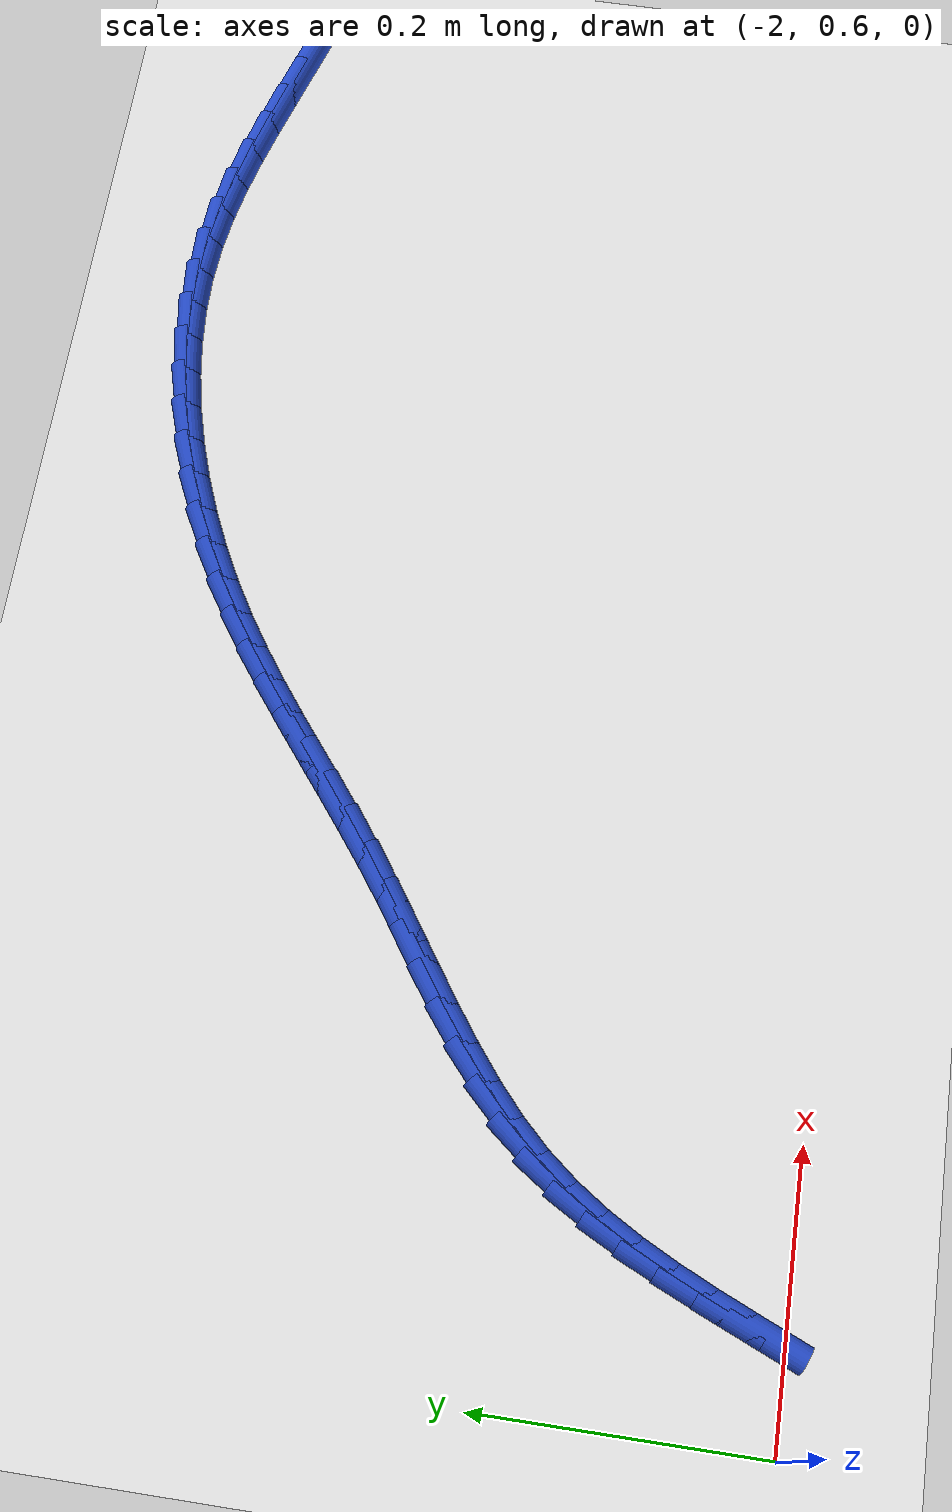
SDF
<sdf version="1.6">
 <world name="default">
  <model name="ground_plane">
   <static>1</static>
   <link name="link">
    <collision name="collision">
     <geometry><plane><normal>0 0 1</normal><size>100 100</size></plane></geometry>
     <surface><friction><ode><mu>100</mu><mu2>50</mu2></ode></friction></surface>
    </collision>
    <visual name="visual">
     <cast_shadows>0</cast_shadows>
     <geometry><plane><normal>0 0 1</normal><size>100 100</size></plane></geometry>
     <material>
      <script><uri>file://media/materials/scripts/gazebo.material</uri><name>Gazebo/WhiteGlow</name></script>
     </material>
    </visual>
   </link>
  </model>
  <model name="line">
   <link name="link_56">
    <pose>-1.00340821507115 1.0851735138263947 0.01 0 1.57 -0.29223755716707067</pose>
    <collision name="collision">
     <geometry><cylinder><radius>0.01</radius><length>0.08</length></cylinder></geometry>
    </collision>
    <visual name="visual">
     <material>
      <script><name>Gazebo/Blue</name><uri>file://media/materials/scripts/gazebo.material</uri></script>
     </material>
     <geometry><cylinder><radius>0.01</radius><length>0.08</length></cylinder></geometry>
    </visual>
   </link>
   <link name="link_57">
    <pose>-1.031790990753054 1.093712506826285 0.01 0 1.57 -0.28821362235391973</pose>
    <collision name="collision">
     <geometry><cylinder><radius>0.01</radius><length>0.08</length></cylinder></geometry>
    </collision>
    <visual name="visual">
     <material>
      <script><name>Gazebo/Blue</name><uri>file://media/materials/scripts/gazebo.material</uri></script>
     </material>
     <geometry><cylinder><radius>0.01</radius><length>0.08</length></cylinder></geometry>
    </visual>
   </link>
   <link name="link_58">
    <pose>-1.0601966797976858 1.1021338950456256 0.01 0 1.57 -0.27050898241524346</pose>
    <collision name="collision">
     <geometry><cylinder><radius>0.01</radius><length>0.08</length></cylinder></geometry>
    </collision>
    <visual name="visual">
     <material>
      <script><name>Gazebo/Blue</name><uri>file://media/materials/scripts/gazebo.material</uri></script>
     </material>
     <geometry><cylinder><radius>0.01</radius><length>0.08</length></cylinder></geometry>
    </visual>
   </link>
   <link name="link_59">
    <pose>-1.088674833239998 1.1100310630209114 0.01 0 1.57 -0.23892404549896074</pose>
    <collision name="collision">
     <geometry><cylinder><radius>0.01</radius><length>0.08</length></cylinder></geometry>
    </collision>
    <visual name="visual">
     <material>
      <script><name>Gazebo/Blue</name><uri>file://media/materials/scripts/gazebo.material</uri></script>
     </material>
     <geometry><cylinder><radius>0.01</radius><length>0.08</length></cylinder></geometry>
    </visual>
   </link>
   <link name="link_60">
    <pose>-1.1172750021149411 1.1169973952886356 0.01 0 1.57 -0.19319904887697997</pose>
    <collision name="collision">
     <geometry><cylinder><radius>0.01</radius><length>0.08</length></cylinder></geometry>
    </collision>
    <visual name="visual">
     <material>
      <script><name>Gazebo/Blue</name><uri>file://media/materials/scripts/gazebo.material</uri></script>
     </material>
     <geometry><cylinder><radius>0.01</radius><length>0.08</length></cylinder></geometry>
    </visual>
   </link>
   <link name="link_61">
    <pose>-1.1460467374574692 1.1226262763852939 0.01 0 1.57 -0.13319877766285074</pose>
    <collision name="collision">
     <geometry><cylinder><radius>0.01</radius><length>0.08</length></cylinder></geometry>
    </collision>
    <visual name="visual">
     <material>
      <script><name>Gazebo/Blue</name><uri>file://media/materials/scripts/gazebo.material</uri></script>
     </material>
     <geometry><cylinder><radius>0.01</radius><length>0.08</length></cylinder></geometry>
    </visual>
   </link>
   <link name="link_62">
    <pose>-1.1750395903025324 1.1265110908473803 0.01 0 1.57 -0.06005425638500705</pose>
    <collision name="collision">
     <geometry><cylinder><radius>0.01</radius><length>0.08</length></cylinder></geometry>
    </collision>
    <visual name="visual">
     <material>
      <script><name>Gazebo/Blue</name><uri>file://media/materials/scripts/gazebo.material</uri></script>
     </material>
     <geometry><cylinder><radius>0.01</radius><length>0.08</length></cylinder></geometry>
    </visual>
   </link>
   <link name="link_63">
    <pose>-1.2042945184311906 1.1282700889272417 0.01 0 1.57 0.015351497678062414</pose>
    <collision name="collision">
     <geometry><cylinder><radius>0.01</radius><length>0.08</length></cylinder></geometry>
    </collision>
    <visual name="visual">
     <material>
      <script><name>Gazebo/Blue</name><uri>file://media/materials/scripts/gazebo.material</uri></script>
     </material>
     <geometry><cylinder><radius>0.01</radius><length>0.08</length></cylinder></geometry>
    </visual>
   </link>
   <link name="link_64">
    <pose>-1.233750066557036 1.1278178666231757 0.01 0 1.57 0.08628583575709244</pose>
    <collision name="collision">
     <geometry><cylinder><radius>0.01</radius><length>0.08</length></cylinder></geometry>
    </collision>
    <visual name="visual">
     <material>
      <script><name>Gazebo/Blue</name><uri>file://media/materials/scripts/gazebo.material</uri></script>
     </material>
     <geometry><cylinder><radius>0.01</radius><length>0.08</length></cylinder></geometry>
    </visual>
   </link>
   <link name="link_65">
    <pose>-1.2632774915517027 1.1252637261971643 0.01 0 1.57 0.15296749406116503</pose>
    <collision name="collision">
     <geometry><cylinder><radius>0.01</radius><length>0.08</length></cylinder></geometry>
    </collision>
    <visual name="visual">
     <material>
      <script><name>Gazebo/Blue</name><uri>file://media/materials/scripts/gazebo.material</uri></script>
     </material>
     <geometry><cylinder><radius>0.01</radius><length>0.08</length></cylinder></geometry>
    </visual>
   </link>
   <link name="link_66">
    <pose>-1.2927468729551836 1.1207203766758969 0.01 0 1.57 0.21583152023191826</pose>
    <collision name="collision">
     <geometry><cylinder><radius>0.01</radius><length>0.08</length></cylinder></geometry>
    </collision>
    <visual name="visual">
     <material>
      <script><name>Gazebo/Blue</name><uri>file://media/materials/scripts/gazebo.material</uri></script>
     </material>
     <geometry><cylinder><radius>0.01</radius><length>0.08</length></cylinder></geometry>
    </visual>
   </link>
   <link name="link_67">
    <pose>-1.3220282903074692 1.114300527086062 0.01 0 1.57 0.27537157020141606</pose>
    <collision name="collision">
     <geometry><cylinder><radius>0.01</radius><length>0.08</length></cylinder></geometry>
    </collision>
    <visual name="visual">
     <material>
      <script><name>Gazebo/Blue</name><uri>file://media/materials/scripts/gazebo.material</uri></script>
     </material>
     <geometry><cylinder><radius>0.01</radius><length>0.08</length></cylinder></geometry>
    </visual>
   </link>
   <link name="link_68">
    <pose>-1.3509918231485527 1.10611688645435 0.01 0 1.57 0.33211315594913415</pose>
    <collision name="collision">
     <geometry><cylinder><radius>0.01</radius><length>0.08</length></cylinder></geometry>
    </collision>
    <visual name="visual">
     <material>
      <script><name>Gazebo/Blue</name><uri>file://media/materials/scripts/gazebo.material</uri></script>
     </material>
     <geometry><cylinder><radius>0.01</radius><length>0.08</length></cylinder></geometry>
    </visual>
   </link>
   <link name="link_69">
    <pose>-1.379507551018425 1.0962821638074498 0.01 0 1.57 0.3865977597009966</pose>
    <collision name="collision">
     <geometry><cylinder><radius>0.01</radius><length>0.08</length></cylinder></geometry>
    </collision>
    <visual name="visual">
     <material>
      <script><name>Gazebo/Blue</name><uri>file://media/materials/scripts/gazebo.material</uri></script>
     </material>
     <geometry><cylinder><radius>0.01</radius><length>0.08</length></cylinder></geometry>
    </visual>
   </link>
   <link name="link_70">
    <pose>-1.407445553457078 1.0849090681720504 0.01 0 1.57 0.4393756867573206</pose>
    <collision name="collision">
     <geometry><cylinder><radius>0.01</radius><length>0.08</length></cylinder></geometry>
    </collision>
    <visual name="visual">
     <material>
      <script><name>Gazebo/Blue</name><uri>file://media/materials/scripts/gazebo.material</uri></script>
     </material>
     <geometry><cylinder><radius>0.01</radius><length>0.08</length></cylinder></geometry>
    </visual>
   </link>
   <link name="link_71">
    <pose>-1.4346759100045041 1.072110308574841 0.01 0 1.57 0.4910056976154706</pose>
    <collision name="collision">
     <geometry><cylinder><radius>0.01</radius><length>0.08</length></cylinder></geometry>
    </collision>
    <visual name="visual">
     <material>
      <script><name>Gazebo/Blue</name><uri>file://media/materials/scripts/gazebo.material</uri></script>
     </material>
     <geometry><cylinder><radius>0.01</radius><length>0.08</length></cylinder></geometry>
    </visual>
   </link>
   <link name="link_72">
    <pose>-1.4610687002006943 1.0579985940425105 0.01 0 1.57 0.5419522532324829</pose>
    <collision name="collision">
     <geometry><cylinder><radius>0.01</radius><length>0.08</length></cylinder></geometry>
    </collision>
    <visual name="visual">
     <material>
      <script><name>Gazebo/Blue</name><uri>file://media/materials/scripts/gazebo.material</uri></script>
     </material>
     <geometry><cylinder><radius>0.01</radius><length>0.08</length></cylinder></geometry>
    </visual>
   </link>
   <link name="link_73">
    <pose>-1.4864981595852664 1.0426878607479424 0.01 0 1.57 0.5887120614261674</pose>
    <collision name="collision">
     <geometry><cylinder><radius>0.01</radius><length>0.08</length></cylinder></geometry>
    </collision>
    <visual name="visual">
     <material>
      <script><name>Gazebo/Blue</name><uri>file://media/materials/scripts/gazebo.material</uri></script>
     </material>
     <geometry><cylinder><radius>0.01</radius><length>0.08</length></cylinder></geometry>
    </visual>
   </link>
   <link name="link_74">
    <pose>-1.5109880116252294 1.0263361843148298 0.01 0 1.57 0.6259866281933434</pose>
    <collision name="collision">
     <geometry><cylinder><radius>0.01</radius><length>0.08</length></cylinder></geometry>
    </collision>
    <visual name="visual">
     <material>
      <script><name>Gazebo/Blue</name><uri>file://media/materials/scripts/gazebo.material</uri></script>
     </material>
     <geometry><cylinder><radius>0.01</radius><length>0.08</length></cylinder></geometry>
    </visual>
   </link>
   <link name="link_75">
    <pose>-1.5347494586968098 1.0091569974531276 0.01 0 1.57 0.653000326784541</pose>
    <collision name="collision">
     <geometry><cylinder><radius>0.01</radius><length>0.08</length></cylinder></geometry>
    </collision>
    <visual name="visual">
     <material>
      <script><name>Gazebo/Blue</name><uri>file://media/materials/scripts/gazebo.material</uri></script>
     </material>
     <geometry><cylinder><radius>0.01</radius><length>0.08</length></cylinder></geometry>
    </visual>
   </link>
   <link name="link_76">
    <pose>-1.558005579722825 0.9913672396726592 0.01 0 1.57 0.6695249212850303</pose>
    <collision name="collision">
     <geometry><cylinder><radius>0.01</radius><length>0.08</length></cylinder></geometry>
    </collision>
    <visual name="visual">
     <material>
      <script><name>Gazebo/Blue</name><uri>file://media/materials/scripts/gazebo.material</uri></script>
     </material>
     <geometry><cylinder><radius>0.01</radius><length>0.08</length></cylinder></geometry>
    </visual>
   </link>
   <link name="link_77">
    <pose>-1.5809794536260942 0.9731838504832468 0.01 0 1.57 0.675493985684802</pose>
    <collision name="collision">
     <geometry><cylinder><radius>0.01</radius><length>0.08</length></cylinder></geometry>
    </collision>
    <visual name="visual">
     <material>
      <script><name>Gazebo/Blue</name><uri>file://media/materials/scripts/gazebo.material</uri></script>
     </material>
     <geometry><cylinder><radius>0.01</radius><length>0.08</length></cylinder></geometry>
    </visual>
   </link>
   <link name="link_78">
    <pose>-1.6038941593294362 0.9548237693947149 0.01 0 1.57 0.6709497420908528</pose>
    <collision name="collision">
     <geometry><cylinder><radius>0.01</radius><length>0.08</length></cylinder></geometry>
    </collision>
    <visual name="visual">
     <material>
      <script><name>Gazebo/Blue</name><uri>file://media/materials/scripts/gazebo.material</uri></script>
     </material>
     <geometry><cylinder><radius>0.01</radius><length>0.08</length></cylinder></geometry>
    </visual>
   </link>
   <link name="link_79">
    <pose>-1.6269727757556685 0.9365039359168855 0.01 0 1.57 0.6560216477665919</pose>
    <collision name="collision">
     <geometry><cylinder><radius>0.01</radius><length>0.08</length></cylinder></geometry>
    </collision>
    <visual name="visual">
     <material>
      <script><name>Gazebo/Blue</name><uri>file://media/materials/scripts/gazebo.material</uri></script>
     </material>
     <geometry><cylinder><radius>0.01</radius><length>0.08</length></cylinder></geometry>
    </visual>
   </link>
   <link name="link_80">
    <pose>-1.6504383818276087 0.918441289559582 0.01 0 1.57 0.6311446660395433</pose>
    <collision name="collision">
     <geometry><cylinder><radius>0.01</radius><length>0.08</length></cylinder></geometry>
    </collision>
    <visual name="visual">
     <material>
      <script><name>Gazebo/Blue</name><uri>file://media/materials/scripts/gazebo.material</uri></script>
     </material>
     <geometry><cylinder><radius>0.01</radius><length>0.08</length></cylinder></geometry>
    </visual>
   </link>
   <link name="link_81">
    <pose>-1.6745091627436242 0.9008486929698066 0.01 0 1.57 0.6067883262866891</pose>
    <collision name="collision">
     <geometry><cylinder><radius>0.01</radius><length>0.08</length></cylinder></geometry>
    </collision>
    <visual name="visual">
     <material>
      <script><name>Gazebo/Blue</name><uri>file://media/materials/scripts/gazebo.material</uri></script>
     </material>
     <geometry><cylinder><radius>0.01</radius><length>0.08</length></cylinder></geometry>
    </visual>
   </link>
   <link name="link_82">
    <pose>-1.6991606686183949 0.883736874415861 0.01 0 1.57 0.5973870997326339</pose>
    <collision name="collision">
     <geometry><cylinder><radius>0.01</radius><length>0.08</length></cylinder></geometry>
    </collision>
    <visual name="visual">
     <material>
      <script><name>Gazebo/Blue</name><uri>file://media/materials/scripts/gazebo.material</uri></script>
     </material>
     <geometry><cylinder><radius>0.01</radius><length>0.08</length></cylinder></geometry>
    </visual>
   </link>
   <link name="link_83">
    <pose>-1.724019076008668 0.8668255061242119 0.01 0 1.57 0.6038579779895729</pose>
    <collision name="collision">
     <geometry><cylinder><radius>0.01</radius><length>0.08</length></cylinder></geometry>
    </collision>
    <visual name="visual">
     <material>
      <script><name>Gazebo/Blue</name><uri>file://media/materials/scripts/gazebo.material</uri></script>
     </material>
     <geometry><cylinder><radius>0.01</radius><length>0.08</length></cylinder></geometry>
    </visual>
   </link>
   <link name="link_84">
    <pose>-1.748683426537701 0.8498116547572891 0.01 0 1.57 0.6264634584563161</pose>
    <collision name="collision">
     <geometry><cylinder><radius>0.01</radius><length>0.08</length></cylinder></geometry>
    </collision>
    <visual name="visual">
     <material>
      <script><name>Gazebo/Blue</name><uri>file://media/materials/scripts/gazebo.material</uri></script>
     </material>
     <geometry><cylinder><radius>0.01</radius><length>0.08</length></cylinder></geometry>
    </visual>
   </link>
   <link name="link_85">
    <pose>-1.7727527618287509 0.8323923869775212 0.01 0 1.57 0.6659303173637442</pose>
    <collision name="collision">
     <geometry><cylinder><radius>0.01</radius><length>0.08</length></cylinder></geometry>
    </collision>
    <visual name="visual">
     <material>
      <script><name>Gazebo/Blue</name><uri>file://media/materials/scripts/gazebo.material</uri></script>
     </material>
     <geometry><cylinder><radius>0.01</radius><length>0.08</length></cylinder></geometry>
    </visual>
   </link>
   <link name="link_86">
    <pose>-1.7958261235050728 0.8142647694473372 0.01 0 1.57 0.7233071002915172</pose>
    <collision name="collision">
     <geometry><cylinder><radius>0.01</radius><length>0.08</length></cylinder></geometry>
    </collision>
    <visual name="visual">
     <material>
      <script><name>Gazebo/Blue</name><uri>file://media/materials/scripts/gazebo.material</uri></script>
     </material>
     <geometry><cylinder><radius>0.01</radius><length>0.08</length></cylinder></geometry>
    </visual>
   </link>
   <link name="link_87">
    <pose>-1.8175025531899254 0.7951258688291667 0.01 0 1.57 0.7996435208168676</pose>
    <collision name="collision">
     <geometry><cylinder><radius>0.01</radius><length>0.08</length></cylinder></geometry>
    </collision>
    <visual name="visual">
     <material>
      <script><name>Gazebo/Blue</name><uri>file://media/materials/scripts/gazebo.material</uri></script>
     </material>
     <geometry><cylinder><radius>0.01</radius><length>0.08</length></cylinder></geometry>
    </visual>
   </link>
   <link name="link_88">
    <pose>-1.837381092506565 0.774672751785438 0.01 0 1.57 0.8920874336274356</pose>
    <collision name="collision">
     <geometry><cylinder><radius>0.01</radius><length>0.08</length></cylinder></geometry>
    </collision>
    <visual name="visual">
     <material>
      <script><name>Gazebo/Blue</name><uri>file://media/materials/scripts/gazebo.material</uri></script>
     </material>
     <geometry><cylinder><radius>0.01</radius><length>0.08</length></cylinder></geometry>
    </visual>
   </link>
   <link name="link_89">
    <pose>-1.8551390663523812 0.7526549551115702 0.01 0 1.57 0.9787002481087342</pose>
    <collision name="collision">
     <geometry><cylinder><radius>0.01</radius><length>0.08</length></cylinder></geometry>
    </collision>
    <visual name="visual">
     <material>
      <script><name>Gazebo/Blue</name><uri>file://media/materials/scripts/gazebo.material</uri></script>
     </material>
     <geometry><cylinder><radius>0.01</radius><length>0.08</length></cylinder></geometry>
    </visual>
   </link>
   <link name="link_90">
    <pose>-1.8709467634998638 0.7291524294796564 0.01 0 1.57 1.0498367816689436</pose>
    <collision name="collision">
     <geometry><cylinder><radius>0.01</radius><length>0.08</length></cylinder></geometry>
    </collision>
    <visual name="visual">
     <material>
      <script><name>Gazebo/Blue</name><uri>file://media/materials/scripts/gazebo.material</uri></script>
     </material>
     <geometry><cylinder><radius>0.01</radius><length>0.08</length></cylinder></geometry>
    </visual>
   </link>
   <link name="link_91">
    <pose>-1.8851658714181745 0.7043734124171848 0.01 0 1.57 1.1050111438197032</pose>
    <collision name="collision">
     <geometry><cylinder><radius>0.01</radius><length>0.08</length></cylinder></geometry>
    </collision>
    <visual name="visual">
     <material>
      <script><name>Gazebo/Blue</name><uri>file://media/materials/scripts/gazebo.material</uri></script>
     </material>
     <geometry><cylinder><radius>0.01</radius><length>0.08</length></cylinder></geometry>
    </visual>
   </link>
   <link name="link_92">
    <pose>-1.8981585012282745 0.6785264254084178 0.01 0 1.57 1.14451105194013</pose>
    <collision name="collision">
     <geometry><cylinder><radius>0.01</radius><length>0.08</length></cylinder></geometry>
    </collision>
    <visual name="visual">
     <material>
      <script><name>Gazebo/Blue</name><uri>file://media/materials/scripts/gazebo.material</uri></script>
     </material>
     <geometry><cylinder><radius>0.01</radius><length>0.08</length></cylinder></geometry>
    </visual>
   </link>
   <link name="link_93">
    <pose>-1.9102867640511214 0.6518199899376184 0.01 0 1.57 1.1689526801864314</pose>
    <collision name="collision">
     <geometry><cylinder><radius>0.01</radius><length>0.08</length></cylinder></geometry>
    </collision>
    <visual name="visual">
     <material>
      <script><name>Gazebo/Blue</name><uri>file://media/materials/scripts/gazebo.material</uri></script>
     </material>
     <geometry><cylinder><radius>0.01</radius><length>0.08</length></cylinder></geometry>
    </visual>
   </link>
   <link name="link_94">
    <pose>-1.9219127710076753 0.6244626274890488 0.01 0 1.57 1.1789934690642276</pose>
    <collision name="collision">
     <geometry><cylinder><radius>0.01</radius><length>0.08</length></cylinder></geometry>
    </collision>
    <visual name="visual">
     <material>
      <script><name>Gazebo/Blue</name><uri>file://media/materials/scripts/gazebo.material</uri></script>
     </material>
     <geometry><cylinder><radius>0.01</radius><length>0.08</length></cylinder></geometry>
    </visual>
   </link>
  </model>
 </world>
</sdf>
